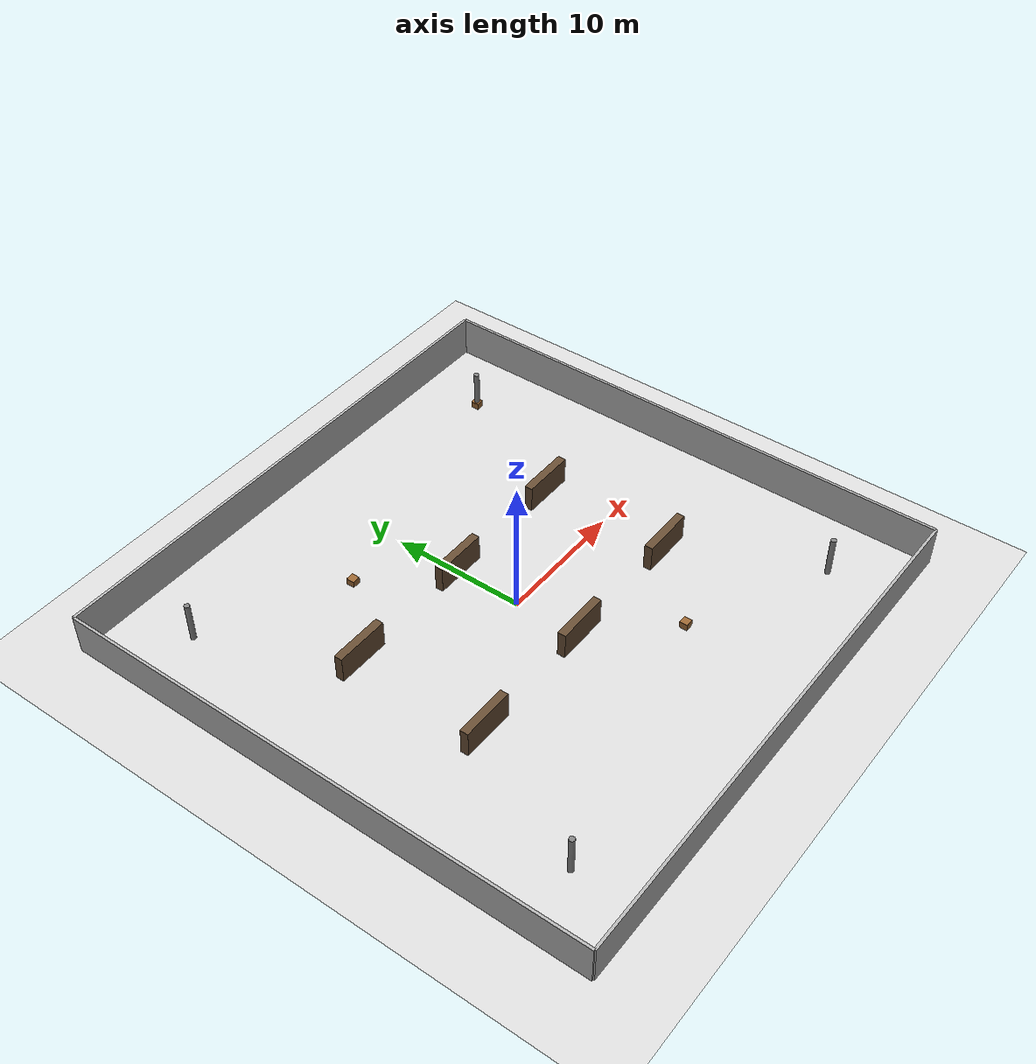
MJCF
<!-- Warehouse Environment for Navigation Testing -->
<!-- Include this in the main model or load separately -->

<mujoco model="warehouse">
  <compiler angle="radian"/>

  <asset>
    <texture name="floor_tex" type="2d" builtin="checker" width="512" height="512"
             rgb1="0.9 0.9 0.9" rgb2="0.8 0.8 0.8"/>
    <material name="floor_mat" texture="floor_tex" texrepeat="20 20"/>
    <material name="wall_mat" rgba="0.7 0.7 0.7 1"/>
    <material name="shelf_mat" rgba="0.4 0.3 0.2 1"/>
    <material name="box_mat" rgba="0.6 0.4 0.2 1"/>
  </asset>

  <worldbody>
    <!-- Floor -->
    <geom name="floor" type="plane" size="25 25 0.1" material="floor_mat"/>

    <!-- Outer walls -->
    <body name="north_wall" pos="0 20 1.5">
      <geom type="box" size="20 0.1 1.5" material="wall_mat"/>
    </body>
    <body name="south_wall" pos="0 -20 1.5">
      <geom type="box" size="20 0.1 1.5" material="wall_mat"/>
    </body>
    <body name="east_wall" pos="20 0 1.5">
      <geom type="box" size="0.1 20 1.5" material="wall_mat"/>
    </body>
    <body name="west_wall" pos="-20 0 1.5">
      <geom type="box" size="0.1 20 1.5" material="wall_mat"/>
    </body>

    <!-- Shelf row 1 -->
    <body name="shelf_1_1" pos="-10 5 1">
      <geom type="box" size="2 0.3 1" material="shelf_mat"/>
    </body>
    <body name="shelf_1_2" pos="-10 -5 1">
      <geom type="box" size="2 0.3 1" material="shelf_mat"/>
    </body>

    <!-- Shelf row 2 -->
    <body name="shelf_2_1" pos="0 5 1">
      <geom type="box" size="2 0.3 1" material="shelf_mat"/>
    </body>
    <body name="shelf_2_2" pos="0 -5 1">
      <geom type="box" size="2 0.3 1" material="shelf_mat"/>
    </body>

    <!-- Shelf row 3 -->
    <body name="shelf_3_1" pos="10 5 1">
      <geom type="box" size="2 0.3 1" material="shelf_mat"/>
    </body>
    <body name="shelf_3_2" pos="10 -5 1">
      <geom type="box" size="2 0.3 1" material="shelf_mat"/>
    </body>

    <!-- Random boxes -->
    <body name="box1" pos="-5 10 0.25">
      <geom type="box" size="0.3 0.3 0.25" material="box_mat"/>
    </body>
    <body name="box2" pos="5 -10 0.25">
      <geom type="box" size="0.3 0.3 0.25" material="box_mat"/>
    </body>
    <body name="box3" pos="15 15 0.25">
      <geom type="box" size="0.3 0.3 0.25" material="box_mat"/>
    </body>

    <!-- Pillars -->
    <body name="pillar_1" pos="-15 15 1.5">
      <geom type="cylinder" size="0.2 1.5" rgba="0.5 0.5 0.5 1"/>
    </body>
    <body name="pillar_2" pos="15 15 1.5">
      <geom type="cylinder" size="0.2 1.5" rgba="0.5 0.5 0.5 1"/>
    </body>
    <body name="pillar_3" pos="-15 -15 1.5">
      <geom type="cylinder" size="0.2 1.5" rgba="0.5 0.5 0.5 1"/>
    </body>
    <body name="pillar_4" pos="15 -15 1.5">
      <geom type="cylinder" size="0.2 1.5" rgba="0.5 0.5 0.5 1"/>
    </body>
  </worldbody>
</mujoco>
